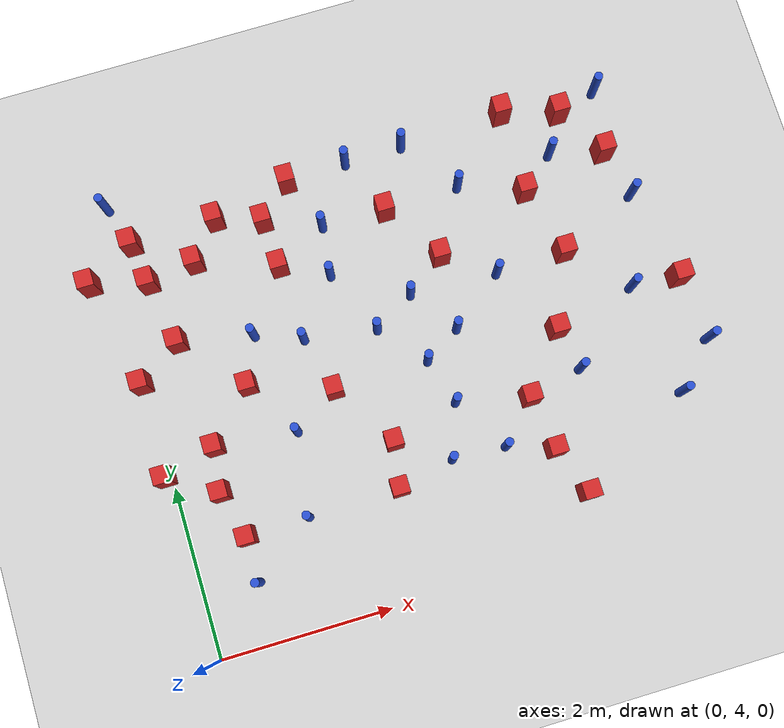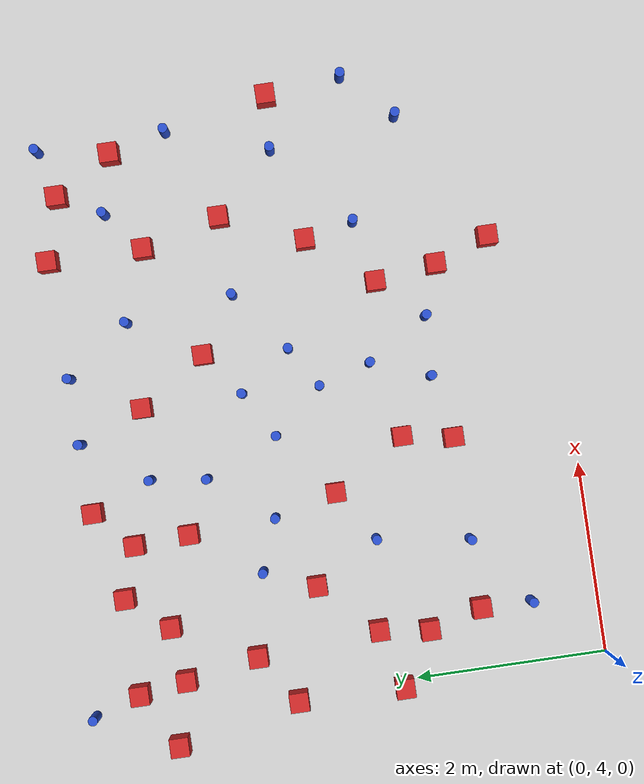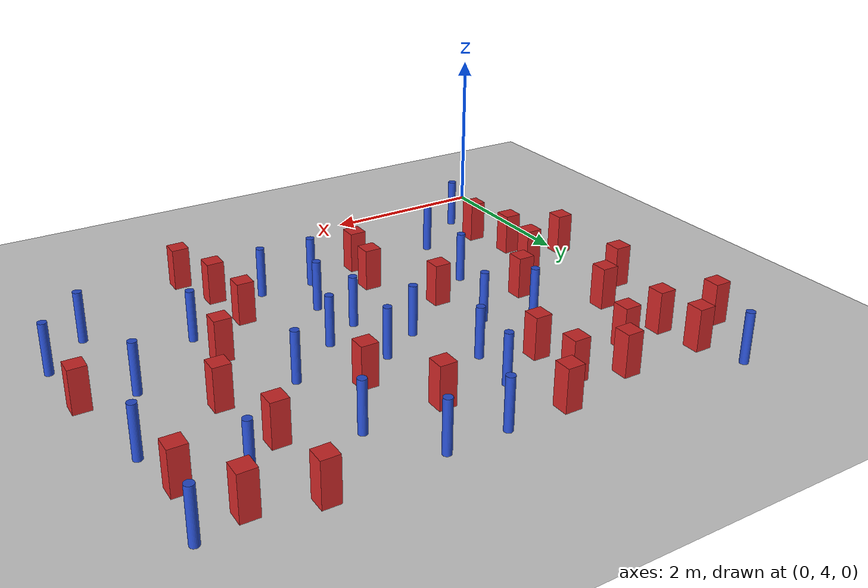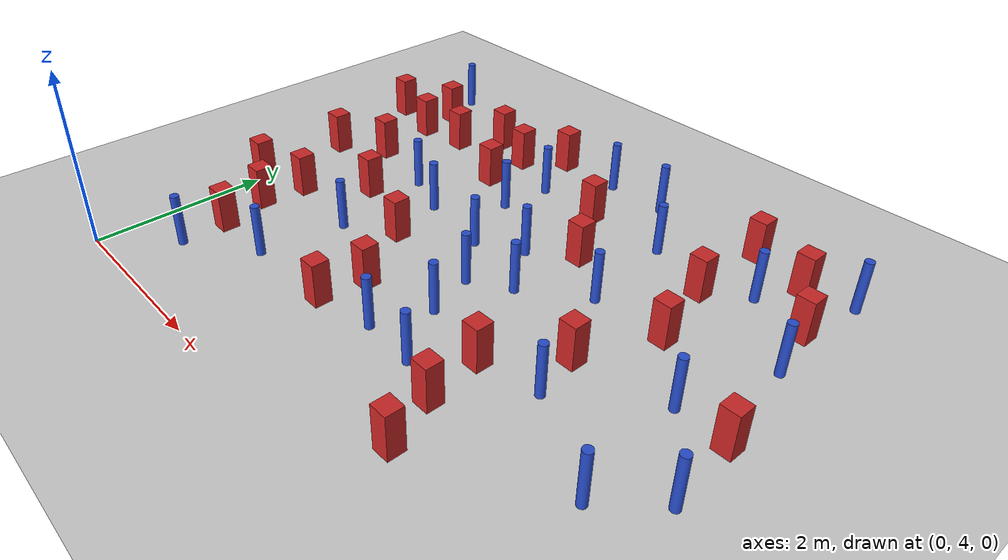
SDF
<sdf version="1.6">
 <world name="default">
  <model name="ground_plane">
   <static>1</static>
   <link name="link">
    <collision name="collision">
     <geometry><plane><normal>0 0 1</normal><size>100 100</size></plane></geometry>
     <surface><friction><ode><mu>100</mu><mu2>50</mu2></ode></friction></surface>
    </collision>
    <visual name="visual">
     <cast_shadows>0</cast_shadows>
     <geometry><plane><normal>0 0 1</normal><size>100 100</size></plane></geometry>
     <material>
      <ambient>1.0 1.0 1.0 1.0</ambient>
      <diffuse>0.8 0.8 0.8 1.0</diffuse>
      <specular>0.01 0.01 0.01 1.000000</specular>
     </material>
    </visual>
   </link>
  </model>
  <model name="pole_obstacle1">
   <static>true</static>
   <pose>3.19123953107 6.57956289459 2.88873142074e-08 -9.90536689859e-09 4.60219948989e-07 -1.20965994961e-07</pose>
   <link name="link">
    <pose>0 0 0.3 0 -0 0</pose>
    <inertial>
     <mass>1</mass>
     <inertia><ixx>0.145833</ixx><ixy>0</ixy><ixz>0</ixz><iyy>0.145833</iyy><iyz>0</iyz><izz>0.125</izz></inertia>
    </inertial>
    <collision name="collision">
     <geometry><cylinder><radius>0.05</radius><length>.6</length></cylinder></geometry>
    </collision>
    <visual name="visual">
     <geometry><cylinder><radius>0.05</radius><length>.6</length></cylinder></geometry>
     <material>
      <script><name>Gazebo/Blue</name><uri>file://media/materials/scripts/gazebo.material</uri></script>
     </material>
    </visual>
   </link>
  </model>
  <model name="square_post_obstacle6">
   <static>true</static>
   <pose>0.913329731252 8.47104677812 8.22691968438e-08 7.22125133819e-06 -7.54495500217e-07 2.29674213826e-05</pose>
   <link name="link">
    <pose>0 0 0.25 0 -0 0</pose>
    <inertial>
     <mass>100</mass>
     <inertia>
      <ixx>0.166667</ixx>
      <ixy>0</ixy>
      <ixz>0</ixz>
      <iyy>0.166667</iyy>
      <iyz>0</iyz>
      <izz>0.166667</izz>
     </inertia>
    </inertial>
    <collision name="collision"><geometry><box><size>.2 .2 .5</size></box></geometry></collision>
    <visual name="visual">
     <geometry><box><size>.2 .2 .5</size></box></geometry>
     <material>
      <script><name>Gazebo/Red</name><uri>file://media/materials/scripts/gazebo.material</uri></script>
     </material>
    </visual>
   </link>
  </model>
  <model name="pole_obstacle23">
   <static>true</static>
   <pose>5.88145847452 5.40329038732 2.88873142074e-08 -9.90536690842e-09 4.60219948965e-07 -1.20965994976e-07</pose>
   <link name="link">
    <pose>0 0 0.3 0 -0 0</pose>
    <inertial>
     <mass>1</mass>
     <inertia><ixx>0.145833</ixx><ixy>0</ixy><ixz>0</ixz><iyy>0.145833</iyy><iyz>0</iyz><izz>0.125</izz></inertia>
    </inertial>
    <collision name="collision">
     <geometry><cylinder><radius>0.05</radius><length>.6</length></cylinder></geometry>
    </collision>
    <visual name="visual">
     <geometry><cylinder><radius>0.05</radius><length>.6</length></cylinder></geometry>
     <material>
      <script><name>Gazebo/Blue</name><uri>file://media/materials/scripts/gazebo.material</uri></script>
     </material>
    </visual>
   </link>
  </model>
  <model name="square_post_obstacle23">
   <static>true</static>
   <pose>-0.0565510198866 6.14396593043 8.22691968438e-08 7.2212513382e-06 -7.54495500217e-07 2.29674213826e-05</pose>
   <link name="link">
    <pose>0 0 0.25 0 -0 0</pose>
    <inertial>
     <mass>100</mass>
     <inertia>
      <ixx>0.166667</ixx>
      <ixy>0</ixy>
      <ixz>0</ixz>
      <iyy>0.166667</iyy>
      <iyz>0</iyz>
      <izz>0.166667</izz>
     </inertia>
    </inertial>
    <collision name="collision"><geometry><box><size>.2 .2 .5</size></box></geometry></collision>
    <visual name="visual">
     <geometry><box><size>.2 .2 .5</size></box></geometry>
     <material>
      <script><name>Gazebo/Red</name><uri>file://media/materials/scripts/gazebo.material</uri></script>
     </material>
    </visual>
   </link>
  </model>
  <model name="pole_obstacle31">
   <static>true</static>
   <pose>2.39469707681 7.87934457702 2.88873142074e-08 -9.90536689859e-09 4.60219948989e-07 -1.20965994961e-07</pose>
   <link name="link">
    <pose>0 0 0.3 0 -0 0</pose>
    <inertial>
     <mass>1</mass>
     <inertia><ixx>0.145833</ixx><ixy>0</ixy><ixz>0</ixz><iyy>0.145833</iyy><iyz>0</iyz><izz>0.125</izz></inertia>
    </inertial>
    <collision name="collision">
     <geometry><cylinder><radius>0.05</radius><length>.6</length></cylinder></geometry>
    </collision>
    <visual name="visual">
     <geometry><cylinder><radius>0.05</radius><length>.6</length></cylinder></geometry>
     <material>
      <script><name>Gazebo/Blue</name><uri>file://media/materials/scripts/gazebo.material</uri></script>
     </material>
    </visual>
   </link>
  </model>
  <model name="square_post_obstacle30">
   <static>true</static>
   <pose>4.87530580692 9.20063706842 8.22691968438e-08 7.22125133819e-06 -7.54495500217e-07 2.29674213826e-05</pose>
   <link name="link">
    <pose>0 0 0.25 0 -0 0</pose>
    <inertial>
     <mass>100</mass>
     <inertia>
      <ixx>0.166667</ixx>
      <ixy>0</ixy>
      <ixz>0</ixz>
      <iyy>0.166667</iyy>
      <iyz>0</iyz>
      <izz>0.166667</izz>
     </inertia>
    </inertial>
    <collision name="collision"><geometry><box><size>.2 .2 .5</size></box></geometry></collision>
    <visual name="visual">
     <geometry><box><size>.2 .2 .5</size></box></geometry>
     <material>
      <script><name>Gazebo/Red</name><uri>file://media/materials/scripts/gazebo.material</uri></script>
     </material>
    </visual>
   </link>
  </model>
  <model name="pole_obstacle41">
   <static>true</static>
   <pose>1.38249493733 5.24669169826 2.88873142074e-08 -9.90536689852e-09 4.60219948989e-07 -1.2096599496e-07</pose>
   <link name="link">
    <pose>0 0 0.3 0 -0 0</pose>
    <inertial>
     <mass>1</mass>
     <inertia><ixx>0.145833</ixx><ixy>0</ixy><ixz>0</ixz><iyy>0.145833</iyy><iyz>0</iyz><izz>0.125</izz></inertia>
    </inertial>
    <collision name="collision">
     <geometry><cylinder><radius>0.05</radius><length>.6</length></cylinder></geometry>
    </collision>
    <visual name="visual">
     <geometry><cylinder><radius>0.05</radius><length>.6</length></cylinder></geometry>
     <material>
      <script><name>Gazebo/Blue</name><uri>file://media/materials/scripts/gazebo.material</uri></script>
     </material>
    </visual>
   </link>
  </model>
  <model name="pole_obstacle42">
   <static>true</static>
   <pose>0.0901893224247 9.39231995691 2.88873142074e-08 -9.90536691014e-09 4.60219948961e-07 -1.20965994979e-07</pose>
   <link name="link">
    <pose>0 0 0.3 0 -0 0</pose>
    <inertial>
     <mass>1</mass>
     <inertia><ixx>0.145833</ixx><ixy>0</ixy><ixz>0</ixz><iyy>0.145833</iyy><iyz>0</iyz><izz>0.125</izz></inertia>
    </inertial>
    <collision name="collision">
     <geometry><cylinder><radius>0.05</radius><length>.6</length></cylinder></geometry>
    </collision>
    <visual name="visual">
     <geometry><cylinder><radius>0.05</radius><length>.6</length></cylinder></geometry>
     <material>
      <script><name>Gazebo/Blue</name><uri>file://media/materials/scripts/gazebo.material</uri></script>
     </material>
    </visual>
   </link>
  </model>
  <model name="square_post_obstacle32">
   <static>true</static>
   <pose>0.658165198636 5.23855009337 8.22691968438e-08 7.2212513382e-06 -7.54495500217e-07 2.29674213826e-05</pose>
   <link name="link">
    <pose>0 0 0.25 0 -0 0</pose>
    <inertial>
     <mass>100</mass>
     <inertia>
      <ixx>0.166667</ixx>
      <ixy>0</ixy>
      <ixz>0</ixz>
      <iyy>0.166667</iyy>
      <iyz>0</iyz>
      <izz>0.166667</izz>
     </inertia>
    </inertial>
    <collision name="collision"><geometry><box><size>.2 .2 .5</size></box></geometry></collision>
    <visual name="visual">
     <geometry><box><size>.2 .2 .5</size></box></geometry>
     <material>
      <script><name>Gazebo/Red</name><uri>file://media/materials/scripts/gazebo.material</uri></script>
     </material>
    </visual>
   </link>
  </model>
  <model name="square_post_obstacle35">
   <static>true</static>
   <pose>5.08791279874 7.37173077253 8.22691968438e-08 7.2212513382e-06 -7.54495500217e-07 2.29674213826e-05</pose>
   <link name="link">
    <pose>0 0 0.25 0 -0 0</pose>
    <inertial>
     <mass>100</mass>
     <inertia>
      <ixx>0.166667</ixx>
      <ixy>0</ixy>
      <ixz>0</ixz>
      <iyy>0.166667</iyy>
      <iyz>0</iyz>
      <izz>0.166667</izz>
     </inertia>
    </inertial>
    <collision name="collision"><geometry><box><size>.2 .2 .5</size></box></geometry></collision>
    <visual name="visual">
     <geometry><box><size>.2 .2 .5</size></box></geometry>
     <material>
      <script><name>Gazebo/Red</name><uri>file://media/materials/scripts/gazebo.material</uri></script>
     </material>
    </visual>
   </link>
  </model>
  <model name="pole_obstacle46">
   <static>true</static>
   <pose>1.88863690419 7.23096262054 2.88873142074e-08 -9.90536689852e-09 4.60219948989e-07 -1.2096599496e-07</pose>
   <link name="link">
    <pose>0 0 0.3 0 -0 0</pose>
    <inertial>
     <mass>1</mass>
     <inertia><ixx>0.145833</ixx><ixy>0</ixy><ixz>0</ixz><iyy>0.145833</iyy><iyz>0</iyz><izz>0.125</izz></inertia>
    </inertial>
    <collision name="collision">
     <geometry><cylinder><radius>0.05</radius><length>.6</length></cylinder></geometry>
    </collision>
    <visual name="visual">
     <geometry><cylinder><radius>0.05</radius><length>.6</length></cylinder></geometry>
     <material>
      <script><name>Gazebo/Blue</name><uri>file://media/materials/scripts/gazebo.material</uri></script>
     </material>
    </visual>
   </link>
  </model>
  <model name="pole_obstacle49">
   <static>true</static>
   <pose>3.76044722196 5.37779520143 2.88873142074e-08 -9.90536689859e-09 4.60219948989e-07 -1.20965994961e-07</pose>
   <link name="link">
    <pose>0 0 0.3 0 -0 0</pose>
    <inertial>
     <mass>1</mass>
     <inertia><ixx>0.145833</ixx><ixy>0</ixy><ixz>0</ixz><iyy>0.145833</iyy><iyz>0</iyz><izz>0.125</izz></inertia>
    </inertial>
    <collision name="collision">
     <geometry><cylinder><radius>0.05</radius><length>.6</length></cylinder></geometry>
    </collision>
    <visual name="visual">
     <geometry><cylinder><radius>0.05</radius><length>.6</length></cylinder></geometry>
     <material>
      <script><name>Gazebo/Blue</name><uri>file://media/materials/scripts/gazebo.material</uri></script>
     </material>
    </visual>
   </link>
  </model>
  <model name="pole_obstacle53">
   <static>true</static>
   <pose>2.46697062215 8.47078407769 2.88873142074e-08 -9.90536692318e-09 4.6021994893e-07 -1.20965994988e-07</pose>
   <link name="link">
    <pose>0 0 0.3 0 -0 0</pose>
    <inertial>
     <mass>1</mass>
     <inertia><ixx>0.145833</ixx><ixy>0</ixy><ixz>0</ixz><iyy>0.145833</iyy><iyz>0</iyz><izz>0.125</izz></inertia>
    </inertial>
    <collision name="collision">
     <geometry><cylinder><radius>0.05</radius><length>.6</length></cylinder></geometry>
    </collision>
    <visual name="visual">
     <geometry><cylinder><radius>0.05</radius><length>.6</length></cylinder></geometry>
     <material>
      <script><name>Gazebo/Blue</name><uri>file://media/materials/scripts/gazebo.material</uri></script>
     </material>
    </visual>
   </link>
  </model>
  <model name="square_post_obstacle43">
   <static>true</static>
   <pose>1.81317104707 8.72580995912 8.22691968438e-08 7.22125133819e-06 -7.54495500217e-07 2.29674213826e-05</pose>
   <link name="link">
    <pose>0 0 0.25 0 -0 0</pose>
    <inertial>
     <mass>100</mass>
     <inertia>
      <ixx>0.166667</ixx>
      <ixy>0</ixy>
      <ixz>0</ixz>
      <iyy>0.166667</iyy>
      <iyz>0</iyz>
      <izz>0.166667</izz>
     </inertia>
    </inertial>
    <collision name="collision"><geometry><box><size>.2 .2 .5</size></box></geometry></collision>
    <visual name="visual">
     <geometry><box><size>.2 .2 .5</size></box></geometry>
     <material>
      <script><name>Gazebo/Red</name><uri>file://media/materials/scripts/gazebo.material</uri></script>
     </material>
    </visual>
   </link>
  </model>
  <model name="square_post_obstacle48">
   <static>true</static>
   <pose>2.46170097236 5.27326550182 8.22691968438e-08 7.2212513382e-06 -7.54495500217e-07 2.29674213826e-05</pose>
   <link name="link">
    <pose>0 0 0.25 0 -0 0</pose>
    <inertial>
     <mass>100</mass>
     <inertia>
      <ixx>0.166667</ixx>
      <ixy>0</ixy>
      <ixz>0</ixz>
      <iyy>0.166667</iyy>
      <iyz>0</iyz>
      <izz>0.166667</izz>
     </inertia>
    </inertial>
    <collision name="collision"><geometry><box><size>.2 .2 .5</size></box></geometry></collision>
    <visual name="visual">
     <geometry><box><size>.2 .2 .5</size></box></geometry>
     <material>
      <script><name>Gazebo/Red</name><uri>file://media/materials/scripts/gazebo.material</uri></script>
     </material>
    </visual>
   </link>
  </model>
  <model name="square_post_obstacle57">
   <static>true</static>
   <pose>5.53468506495 9.01613387753 8.22691968438e-08 7.22125133819e-06 -7.54495500217e-07 2.29674213826e-05</pose>
   <link name="link">
    <pose>0 0 0.25 0 -0 0</pose>
    <inertial>
     <mass>100</mass>
     <inertia>
      <ixx>0.166667</ixx>
      <ixy>0</ixy>
      <ixz>0</ixz>
      <iyy>0.166667</iyy>
      <iyz>0</iyz>
      <izz>0.166667</izz>
     </inertia>
    </inertial>
    <collision name="collision"><geometry><box><size>.2 .2 .5</size></box></geometry></collision>
    <visual name="visual">
     <geometry><box><size>.2 .2 .5</size></box></geometry>
     <material>
      <script><name>Gazebo/Red</name><uri>file://media/materials/scripts/gazebo.material</uri></script>
     </material>
    </visual>
   </link>
  </model>
  <model name="square_post_obstacle62">
   <static>true</static>
   <pose>0.478777097392 7.61445152014 8.22691968438e-08 7.2212513382e-06 -7.54495500217e-07 2.29674213826e-05</pose>
   <link name="link">
    <pose>0 0 0.25 0 -0 0</pose>
    <inertial>
     <mass>100</mass>
     <inertia>
      <ixx>0.166667</ixx>
      <ixy>0</ixy>
      <ixz>0</ixz>
      <iyy>0.166667</iyy>
      <iyz>0</iyz>
      <izz>0.166667</izz>
     </inertia>
    </inertial>
    <collision name="collision"><geometry><box><size>.2 .2 .5</size></box></geometry></collision>
    <visual name="visual">
     <geometry><box><size>.2 .2 .5</size></box></geometry>
     <material>
      <script><name>Gazebo/Red</name><uri>file://media/materials/scripts/gazebo.material</uri></script>
     </material>
    </visual>
   </link>
  </model>
  <model name="pole_obstacle76">
   <static>true</static>
   <pose>4.13065987566 8.48427852959 2.88873142074e-08 -9.9053668967e-09 4.60219948993e-07 -1.20965994957e-07</pose>
   <link name="link">
    <pose>0 0 0.3 0 -0 0</pose>
    <inertial>
     <mass>1</mass>
     <inertia><ixx>0.145833</ixx><ixy>0</ixy><ixz>0</ixz><iyy>0.145833</iyy><iyz>0</iyz><izz>0.125</izz></inertia>
    </inertial>
    <collision name="collision">
     <geometry><cylinder><radius>0.05</radius><length>.6</length></cylinder></geometry>
    </collision>
    <visual name="visual">
     <geometry><cylinder><radius>0.05</radius><length>.6</length></cylinder></geometry>
     <material>
      <script><name>Gazebo/Blue</name><uri>file://media/materials/scripts/gazebo.material</uri></script>
     </material>
    </visual>
   </link>
  </model>
  <model name="square_post_obstacle66">
   <static>true</static>
   <pose>4.28332563172 5.20060539239 8.22691968438e-08 7.2212513382e-06 -7.54495500217e-07 2.29674213826e-05</pose>
   <link name="link">
    <pose>0 0 0.25 0 -0 0</pose>
    <inertial>
     <mass>100</mass>
     <inertia>
      <ixx>0.166667</ixx>
      <ixy>0</ixy>
      <ixz>0</ixz>
      <iyy>0.166667</iyy>
      <iyz>0</iyz>
      <izz>0.166667</izz>
     </inertia>
    </inertial>
    <collision name="collision"><geometry><box><size>.2 .2 .5</size></box></geometry></collision>
    <visual name="visual">
     <geometry><box><size>.2 .2 .5</size></box></geometry>
     <material>
      <script><name>Gazebo/Red</name><uri>file://media/materials/scripts/gazebo.material</uri></script>
     </material>
    </visual>
   </link>
  </model>
  <model name="pole_obstacle83">
   <static>true</static>
   <pose>2.93807220961 9.14037682477 2.88873142074e-08 -9.90536692318e-09 4.6021994893e-07 -1.20965994988e-07</pose>
   <link name="link">
    <pose>0 0 0.3 0 -0 0</pose>
    <inertial>
     <mass>1</mass>
     <inertia><ixx>0.145833</ixx><ixy>0</ixy><ixz>0</ixz><iyy>0.145833</iyy><iyz>0</iyz><izz>0.125</izz></inertia>
    </inertial>
    <collision name="collision">
     <geometry><cylinder><radius>0.05</radius><length>.6</length></cylinder></geometry>
    </collision>
    <visual name="visual">
     <geometry><cylinder><radius>0.05</radius><length>.6</length></cylinder></geometry>
     <material>
      <script><name>Gazebo/Blue</name><uri>file://media/materials/scripts/gazebo.material</uri></script>
     </material>
    </visual>
   </link>
  </model>
  <model name="square_post_obstacle91">
   <static>true</static>
   <pose>4.19035391945 5.8473071399 8.22691968438e-08 7.2212513382e-06 -7.54495500217e-07 2.29674213826e-05</pose>
   <link name="link">
    <pose>0 0 0.25 0 -0 0</pose>
    <inertial>
     <mass>100</mass>
     <inertia>
      <ixx>0.166667</ixx>
      <ixy>0</ixy>
      <ixz>0</ixz>
      <iyy>0.166667</iyy>
      <iyz>0</iyz>
      <izz>0.166667</izz>
     </inertia>
    </inertial>
    <collision name="collision"><geometry><box><size>.2 .2 .5</size></box></geometry></collision>
    <visual name="visual">
     <geometry><box><size>.2 .2 .5</size></box></geometry>
     <material>
      <script><name>Gazebo/Red</name><uri>file://media/materials/scripts/gazebo.material</uri></script>
     </material>
    </visual>
   </link>
  </model>
  <model name="square_post_obstacle95">
   <static>true</static>
   <pose>4.72839891841 6.51399406358 8.22691968438e-08 7.2212513382e-06 -7.54495500217e-07 2.29674213826e-05</pose>
   <link name="link">
    <pose>0 0 0.25 0 -0 0</pose>
    <inertial>
     <mass>100</mass>
     <inertia>
      <ixx>0.166667</ixx>
      <ixy>0</ixy>
      <ixz>0</ixz>
      <iyy>0.166667</iyy>
      <iyz>0</iyz>
      <izz>0.166667</izz>
     </inertia>
    </inertial>
    <collision name="collision"><geometry><box><size>.2 .2 .5</size></box></geometry></collision>
    <visual name="visual">
     <geometry><box><size>.2 .2 .5</size></box></geometry>
     <material>
      <script><name>Gazebo/Red</name><uri>file://media/materials/scripts/gazebo.material</uri></script>
     </material>
    </visual>
   </link>
  </model>
  <model name="square_post_obstacle97">
   <static>true</static>
   <pose>2.54819670207 5.80178896222 8.22691968438e-08 7.2212513382e-06 -7.54495500217e-07 2.29674213826e-05</pose>
   <link name="link">
    <pose>0 0 0.25 0 -0 0</pose>
    <inertial>
     <mass>100</mass>
     <inertia>
      <ixx>0.166667</ixx>
      <ixy>0</ixy>
      <ixz>0</ixz>
      <iyy>0.166667</iyy>
      <iyz>0</iyz>
      <izz>0.166667</izz>
     </inertia>
    </inertial>
    <collision name="collision"><geometry><box><size>.2 .2 .5</size></box></geometry></collision>
    <visual name="visual">
     <geometry><box><size>.2 .2 .5</size></box></geometry>
     <material>
      <script><name>Gazebo/Red</name><uri>file://media/materials/scripts/gazebo.material</uri></script>
     </material>
    </visual>
   </link>
  </model>
  <model name="pole_obstacle106">
   <static>true</static>
   <pose>3.62266707134 6.84829248047 2.88873142074e-08 -9.90536689859e-09 4.60219948989e-07 -1.20965994961e-07</pose>
   <link name="link">
    <pose>0 0 0.3 0 -0 0</pose>
    <inertial>
     <mass>1</mass>
     <inertia><ixx>0.145833</ixx><ixy>0</ixy><ixz>0</ixz><iyy>0.145833</iyy><iyz>0</iyz><izz>0.125</izz></inertia>
    </inertial>
    <collision name="collision">
     <geometry><cylinder><radius>0.05</radius><length>.6</length></cylinder></geometry>
    </collision>
    <visual name="visual">
     <geometry><cylinder><radius>0.05</radius><length>.6</length></cylinder></geometry>
     <material>
      <script><name>Gazebo/Blue</name><uri>file://media/materials/scripts/gazebo.material</uri></script>
     </material>
    </visual>
   </link>
  </model>
  <model name="pole_obstacle107">
   <static>true</static>
   <pose>1.34589777619 7.43705154483 2.88873142074e-08 -9.90536689852e-09 4.60219948989e-07 -1.2096599496e-07</pose>
   <link name="link">
    <pose>0 0 0.3 0 -0 0</pose>
    <inertial>
     <mass>1</mass>
     <inertia><ixx>0.145833</ixx><ixy>0</ixy><ixz>0</ixz><iyy>0.145833</iyy><iyz>0</iyz><izz>0.125</izz></inertia>
    </inertial>
    <collision name="collision">
     <geometry><cylinder><radius>0.05</radius><length>.6</length></cylinder></geometry>
    </collision>
    <visual name="visual">
     <geometry><cylinder><radius>0.05</radius><length>.6</length></cylinder></geometry>
     <material>
      <script><name>Gazebo/Blue</name><uri>file://media/materials/scripts/gazebo.material</uri></script>
     </material>
    </visual>
   </link>
  </model>
  <model name="square_post_obstacle110">
   <static>true</static>
   <pose>3.68331745202 7.73902149261 8.22691968438e-08 7.2212513382e-06 -7.54495500217e-07 2.29674213826e-05</pose>
   <link name="link">
    <pose>0 0 0.25 0 -0 0</pose>
    <inertial>
     <mass>100</mass>
     <inertia>
      <ixx>0.166667</ixx>
      <ixy>0</ixy>
      <ixz>0</ixz>
      <iyy>0.166667</iyy>
      <iyz>0</iyz>
      <izz>0.166667</izz>
     </inertia>
    </inertial>
    <collision name="collision"><geometry><box><size>.2 .2 .5</size></box></geometry></collision>
    <visual name="visual">
     <geometry><box><size>.2 .2 .5</size></box></geometry>
     <material>
      <script><name>Gazebo/Red</name><uri>file://media/materials/scripts/gazebo.material</uri></script>
     </material>
    </visual>
   </link>
  </model>
  <model name="square_post_obstacle111">
   <static>true</static>
   <pose>0.505751158955 5.80068399848 8.22691968438e-08 7.2212513382e-06 -7.54495500217e-07 2.29674213826e-05</pose>
   <link name="link">
    <pose>0 0 0.25 0 -0 0</pose>
    <inertial>
     <mass>100</mass>
     <inertia>
      <ixx>0.166667</ixx>
      <ixy>0</ixy>
      <ixz>0</ixz>
      <iyy>0.166667</iyy>
      <iyz>0</iyz>
      <izz>0.166667</izz>
     </inertia>
    </inertial>
    <collision name="collision"><geometry><box><size>.2 .2 .5</size></box></geometry></collision>
    <visual name="visual">
     <geometry><box><size>.2 .2 .5</size></box></geometry>
     <material>
      <script><name>Gazebo/Red</name><uri>file://media/materials/scripts/gazebo.material</uri></script>
     </material>
    </visual>
   </link>
  </model>
  <model name="square_post_obstacle113">
   <static>true</static>
   <pose>5.9023980784 8.40773841688 8.22691968438e-08 7.22125133819e-06 -7.54495500217e-07 2.29674213826e-05</pose>
   <link name="link">
    <pose>0 0 0.25 0 -0 0</pose>
    <inertial>
     <mass>100</mass>
     <inertia>
      <ixx>0.166667</ixx>
      <ixy>0</ixy>
      <ixz>0</ixz>
      <iyy>0.166667</iyy>
      <iyz>0</iyz>
      <izz>0.166667</izz>
     </inertia>
    </inertial>
    <collision name="collision"><geometry><box><size>.2 .2 .5</size></box></geometry></collision>
    <visual name="visual">
     <geometry><box><size>.2 .2 .5</size></box></geometry>
     <material>
      <script><name>Gazebo/Red</name><uri>file://media/materials/scripts/gazebo.material</uri></script>
     </material>
    </visual>
   </link>
  </model>
  <model name="square_post_obstacle124">
   <static>true</static>
   <pose>2.20818835917 9.10818057557 8.22691968438e-08 7.22125133819e-06 -7.54495500217e-07 2.29674213826e-05</pose>
   <link name="link">
    <pose>0 0 0.25 0 -0 0</pose>
    <inertial>
     <mass>100</mass>
     <inertia>
      <ixx>0.166667</ixx>
      <ixy>0</ixy>
      <ixz>0</ixz>
      <iyy>0.166667</iyy>
      <iyz>0</iyz>
      <izz>0.166667</izz>
     </inertia>
    </inertial>
    <collision name="collision"><geometry><box><size>.2 .2 .5</size></box></geometry></collision>
    <visual name="visual">
     <geometry><box><size>.2 .2 .5</size></box></geometry>
     <material>
      <script><name>Gazebo/Red</name><uri>file://media/materials/scripts/gazebo.material</uri></script>
     </material>
    </visual>
   </link>
  </model>
  <model name="pole_obstacle129">
   <static>true</static>
   <pose>6.03570572407 9.15384262761 2.88873142074e-08 -9.9053668967e-09 4.60219948993e-07 -1.20965994957e-07</pose>
   <link name="link">
    <pose>0 0 0.3 0 -0 0</pose>
    <inertial>
     <mass>1</mass>
     <inertia><ixx>0.145833</ixx><ixy>0</ixy><ixz>0</ixz><iyy>0.145833</iyy><iyz>0</iyz><izz>0.125</izz></inertia>
    </inertial>
    <collision name="collision">
     <geometry><cylinder><radius>0.05</radius><length>.6</length></cylinder></geometry>
    </collision>
    <visual name="visual">
     <geometry><cylinder><radius>0.05</radius><length>.6</length></cylinder></geometry>
     <material>
      <script><name>Gazebo/Blue</name><uri>file://media/materials/scripts/gazebo.material</uri></script>
     </material>
    </visual>
   </link>
  </model>
  <model name="square_post_obstacle128">
   <static>true</static>
   <pose>1.8469598954 8.14797993601 8.22691968438e-08 7.22125133819e-06 -7.54495500217e-07 2.29674213826e-05</pose>
   <link name="link">
    <pose>0 0 0.25 0 -0 0</pose>
    <inertial>
     <mass>100</mass>
     <inertia>
      <ixx>0.166667</ixx>
      <ixy>0</ixy>
      <ixz>0</ixz>
      <iyy>0.166667</iyy>
      <iyz>0</iyz>
      <izz>0.166667</izz>
     </inertia>
    </inertial>
    <collision name="collision"><geometry><box><size>.2 .2 .5</size></box></geometry></collision>
    <visual name="visual">
     <geometry><box><size>.2 .2 .5</size></box></geometry>
     <material>
      <script><name>Gazebo/Red</name><uri>file://media/materials/scripts/gazebo.material</uri></script>
     </material>
    </visual>
   </link>
  </model>
  <model name="pole_obstacle132">
   <static>true</static>
   <pose>6.36926894897 5.909163744 2.88873142074e-08 -9.90536690842e-09 4.60219948965e-07 -1.20965994976e-07</pose>
   <link name="link">
    <pose>0 0 0.3 0 -0 0</pose>
    <inertial>
     <mass>1</mass>
     <inertia><ixx>0.145833</ixx><ixy>0</ixy><ixz>0</ixz><iyy>0.145833</iyy><iyz>0</iyz><izz>0.125</izz></inertia>
    </inertial>
    <collision name="collision">
     <geometry><cylinder><radius>0.05</radius><length>.6</length></cylinder></geometry>
    </collision>
    <visual name="visual">
     <geometry><cylinder><radius>0.05</radius><length>.6</length></cylinder></geometry>
     <material>
      <script><name>Gazebo/Blue</name><uri>file://media/materials/scripts/gazebo.material</uri></script>
     </material>
    </visual>
   </link>
  </model>
  <model name="square_post_obstacle129">
   <static>true</static>
   <pose>-0.0374609143018 7.25691526056 8.22691968438e-08 7.2212513382e-06 -7.54495500217e-07 2.29674213826e-05</pose>
   <link name="link">
    <pose>0 0 0.25 0 -0 0</pose>
    <inertial>
     <mass>100</mass>
     <inertia>
      <ixx>0.166667</ixx>
      <ixy>0</ixy>
      <ixz>0</ixz>
      <iyy>0.166667</iyy>
      <iyz>0</iyz>
      <izz>0.166667</izz>
     </inertia>
    </inertial>
    <collision name="collision"><geometry><box><size>.2 .2 .5</size></box></geometry></collision>
    <visual name="visual">
     <geometry><box><size>.2 .2 .5</size></box></geometry>
     <material>
      <script><name>Gazebo/Red</name><uri>file://media/materials/scripts/gazebo.material</uri></script>
     </material>
    </visual>
   </link>
  </model>
  <model name="pole_obstacle137">
   <static>true</static>
   <pose>3.2249252004 7.39122287335 2.88873142074e-08 -9.90536689859e-09 4.60219948989e-07 -1.20965994961e-07</pose>
   <link name="link">
    <pose>0 0 0.3 0 -0 0</pose>
    <inertial>
     <mass>1</mass>
     <inertia><ixx>0.145833</ixx><ixy>0</ixy><ixz>0</ixz><iyy>0.145833</iyy><iyz>0</iyz><izz>0.125</izz></inertia>
    </inertial>
    <collision name="collision">
     <geometry><cylinder><radius>0.05</radius><length>.6</length></cylinder></geometry>
    </collision>
    <visual name="visual">
     <geometry><cylinder><radius>0.05</radius><length>.6</length></cylinder></geometry>
     <material>
      <script><name>Gazebo/Blue</name><uri>file://media/materials/scripts/gazebo.material</uri></script>
     </material>
    </visual>
   </link>
  </model>
  <model name="pole_obstacle138">
   <static>true</static>
   <pose>3.35797718544 6.02547066716 2.88873142074e-08 -9.90536689859e-09 4.60219948989e-07 -1.20965994961e-07</pose>
   <link name="link">
    <pose>0 0 0.3 0 -0 0</pose>
    <inertial>
     <mass>1</mass>
     <inertia><ixx>0.145833</ixx><ixy>0</ixy><ixz>0</ixz><iyy>0.145833</iyy><iyz>0</iyz><izz>0.125</izz></inertia>
    </inertial>
    <collision name="collision">
     <geometry><cylinder><radius>0.05</radius><length>.6</length></cylinder></geometry>
    </collision>
    <visual name="visual">
     <geometry><cylinder><radius>0.05</radius><length>.6</length></cylinder></geometry>
     <material>
      <script><name>Gazebo/Blue</name><uri>file://media/materials/scripts/gazebo.material</uri></script>
     </material>
    </visual>
   </link>
  </model>
  <model name="pole_obstacle144">
   <static>true</static>
   <pose>6.05798402083 7.80340541203 2.88873142074e-08 -9.90536690842e-09 4.60219948965e-07 -1.20965994976e-07</pose>
   <link name="link">
    <pose>0 0 0.3 0 -0 0</pose>
    <inertial>
     <mass>1</mass>
     <inertia><ixx>0.145833</ixx><ixy>0</ixy><ixz>0</ixz><iyy>0.145833</iyy><iyz>0</iyz><izz>0.125</izz></inertia>
    </inertial>
    <collision name="collision">
     <geometry><cylinder><radius>0.05</radius><length>.6</length></cylinder></geometry>
    </collision>
    <visual name="visual">
     <geometry><cylinder><radius>0.05</radius><length>.6</length></cylinder></geometry>
     <material>
      <script><name>Gazebo/Blue</name><uri>file://media/materials/scripts/gazebo.material</uri></script>
     </material>
    </visual>
   </link>
  </model>
  <model name="pole_obstacle151">
   <static>true</static>
   <pose>3.63331723428 9.15454733646 2.88873142074e-08 -9.90536692318e-09 4.6021994893e-07 -1.20965994988e-07</pose>
   <link name="link">
    <pose>0 0 0.3 0 -0 0</pose>
    <inertial>
     <mass>1</mass>
     <inertia><ixx>0.145833</ixx><ixy>0</ixy><ixz>0</ixz><iyy>0.145833</iyy><iyz>0</iyz><izz>0.125</izz></inertia>
    </inertial>
    <collision name="collision">
     <geometry><cylinder><radius>0.05</radius><length>.6</length></cylinder></geometry>
    </collision>
    <visual name="visual">
     <geometry><cylinder><radius>0.05</radius><length>.6</length></cylinder></geometry>
     <material>
      <script><name>Gazebo/Blue</name><uri>file://media/materials/scripts/gazebo.material</uri></script>
     </material>
    </visual>
   </link>
  </model>
  <model name="square_post_obstacle148">
   <static>true</static>
   <pose>6.27502830692 6.70637151003 8.22691968438e-08 7.2212513382e-06 -7.54495500217e-07 2.29674213826e-05</pose>
   <link name="link">
    <pose>0 0 0.25 0 -0 0</pose>
    <inertial>
     <mass>100</mass>
     <inertia>
      <ixx>0.166667</ixx>
      <ixy>0</ixy>
      <ixz>0</ixz>
      <iyy>0.166667</iyy>
      <iyz>0</iyz>
      <izz>0.166667</izz>
     </inertia>
    </inertial>
    <collision name="collision"><geometry><box><size>.2 .2 .5</size></box></geometry></collision>
    <visual name="visual">
     <geometry><box><size>.2 .2 .5</size></box></geometry>
     <material>
      <script><name>Gazebo/Red</name><uri>file://media/materials/scripts/gazebo.material</uri></script>
     </material>
    </visual>
   </link>
  </model>
  <model name="pole_obstacle154">
   <static>true</static>
   <pose>0.650008066042 4.70589127056 2.88873142074e-08 -9.90536689661e-09 4.60219948993e-07 -1.20965994957e-07</pose>
   <link name="link">
    <pose>0 0 0.3 0 -0 0</pose>
    <inertial>
     <mass>1</mass>
     <inertia><ixx>0.145833</ixx><ixy>0</ixy><ixz>0</ixz><iyy>0.145833</iyy><iyz>0</iyz><izz>0.125</izz></inertia>
    </inertial>
    <collision name="collision">
     <geometry><cylinder><radius>0.05</radius><length>.6</length></cylinder></geometry>
    </collision>
    <visual name="visual">
     <geometry><cylinder><radius>0.05</radius><length>.6</length></cylinder></geometry>
     <material>
      <script><name>Gazebo/Blue</name><uri>file://media/materials/scripts/gazebo.material</uri></script>
     </material>
    </visual>
   </link>
  </model>
  <model name="pole_obstacle158">
   <static>true</static>
   <pose>1.52254583418 6.21823410261 2.88873142074e-08 -9.90536689852e-09 4.60219948989e-07 -1.2096599496e-07</pose>
   <link name="link">
    <pose>0 0 0.3 0 -0 0</pose>
    <inertial>
     <mass>1</mass>
     <inertia><ixx>0.145833</ixx><ixy>0</ixy><ixz>0</ixz><iyy>0.145833</iyy><iyz>0</iyz><izz>0.125</izz></inertia>
    </inertial>
    <collision name="collision">
     <geometry><cylinder><radius>0.05</radius><length>.6</length></cylinder></geometry>
    </collision>
    <visual name="visual">
     <geometry><cylinder><radius>0.05</radius><length>.6</length></cylinder></geometry>
     <material>
      <script><name>Gazebo/Blue</name><uri>file://media/materials/scripts/gazebo.material</uri></script>
     </material>
    </visual>
   </link>
  </model>
  <model name="pole_obstacle162">
   <static>true</static>
   <pose>5.28960352226 8.55436398244 2.88873142074e-08 -9.9053668967e-09 4.60219948993e-07 -1.20965994957e-07</pose>
   <link name="link">
    <pose>0 0 0.3 0 -0 0</pose>
    <inertial>
     <mass>1</mass>
     <inertia><ixx>0.145833</ixx><ixy>0</ixy><ixz>0</ixz><iyy>0.145833</iyy><iyz>0</iyz><izz>0.125</izz></inertia>
    </inertial>
    <collision name="collision">
     <geometry><cylinder><radius>0.05</radius><length>.6</length></cylinder></geometry>
    </collision>
    <visual name="visual">
     <geometry><cylinder><radius>0.05</radius><length>.6</length></cylinder></geometry>
     <material>
      <script><name>Gazebo/Blue</name><uri>file://media/materials/scripts/gazebo.material</uri></script>
     </material>
    </visual>
   </link>
  </model>
  <model name="square_post_obstacle170">
   <static>true</static>
   <pose>0.262400881148 8.89025189909 8.22691968438e-08 7.22125133819e-06 -7.54495500217e-07 2.29674213826e-05</pose>
   <link name="link">
    <pose>0 0 0.25 0 -0 0</pose>
    <inertial>
     <mass>100</mass>
     <inertia>
      <ixx>0.166667</ixx>
      <ixy>0</ixy>
      <ixz>0</ixz>
      <iyy>0.166667</iyy>
      <iyz>0</iyz>
      <izz>0.166667</izz>
     </inertia>
    </inertial>
    <collision name="collision"><geometry><box><size>.2 .2 .5</size></box></geometry></collision>
    <visual name="visual">
     <geometry><box><size>.2 .2 .5</size></box></geometry>
     <material>
      <script><name>Gazebo/Red</name><uri>file://media/materials/scripts/gazebo.material</uri></script>
     </material>
    </visual>
   </link>
  </model>
  <model name="pole_obstacle171">
   <static>true</static>
   <pose>4.84716301932 5.99158660181 2.88873142074e-08 -9.90536690842e-09 4.60219948965e-07 -1.20965994976e-07</pose>
   <link name="link">
    <pose>0 0 0.3 0 -0 0</pose>
    <inertial>
     <mass>1</mass>
     <inertia><ixx>0.145833</ixx><ixy>0</ixy><ixz>0</ixz><iyy>0.145833</iyy><iyz>0</iyz><izz>0.125</izz></inertia>
    </inertial>
    <collision name="collision">
     <geometry><cylinder><radius>0.05</radius><length>.6</length></cylinder></geometry>
    </collision>
    <visual name="visual">
     <geometry><cylinder><radius>0.05</radius><length>.6</length></cylinder></geometry>
     <material>
      <script><name>Gazebo/Blue</name><uri>file://media/materials/scripts/gazebo.material</uri></script>
     </material>
    </visual>
   </link>
  </model>
  <model name="pole_obstacle177">
   <static>true</static>
   <pose>3.12985846044 5.40985099026 2.88873142074e-08 -9.90536689859e-09 4.60219948989e-07 -1.20965994961e-07</pose>
   <link name="link">
    <pose>0 0 0.3 0 -0 0</pose>
    <inertial>
     <mass>1</mass>
     <inertia><ixx>0.145833</ixx><ixy>0</ixy><ixz>0</ixz><iyy>0.145833</iyy><iyz>0</iyz><izz>0.125</izz></inertia>
    </inertial>
    <collision name="collision">
     <geometry><cylinder><radius>0.05</radius><length>.6</length></cylinder></geometry>
    </collision>
    <visual name="visual">
     <geometry><cylinder><radius>0.05</radius><length>.6</length></cylinder></geometry>
     <material>
      <script><name>Gazebo/Blue</name><uri>file://media/materials/scripts/gazebo.material</uri></script>
     </material>
    </visual>
   </link>
  </model>
  <model name="square_post_obstacle179">
   <static>true</static>
   <pose>1.27571727882 8.90372420095 8.22691968438e-08 7.22125133819e-06 -7.54495500217e-07 2.29674213826e-05</pose>
   <link name="link">
    <pose>0 0 0.25 0 -0 0</pose>
    <inertial>
     <mass>100</mass>
     <inertia>
      <ixx>0.166667</ixx>
      <ixy>0</ixy>
      <ixz>0</ixz>
      <iyy>0.166667</iyy>
      <iyz>0</iyz>
      <izz>0.166667</izz>
     </inertia>
    </inertial>
    <collision name="collision"><geometry><box><size>.2 .2 .5</size></box></geometry></collision>
    <visual name="visual">
     <geometry><box><size>.2 .2 .5</size></box></geometry>
     <material>
      <script><name>Gazebo/Red</name><uri>file://media/materials/scripts/gazebo.material</uri></script>
     </material>
    </visual>
   </link>
  </model>
  <model name="square_post_obstacle185">
   <static>true</static>
   <pose>-0.322947175691 8.55364489366 8.22691968438e-08 7.22125133819e-06 -7.54495500217e-07 2.29674213826e-05</pose>
   <link name="link">
    <pose>0 0 0.25 0 -0 0</pose>
    <inertial>
     <mass>100</mass>
     <inertia>
      <ixx>0.166667</ixx>
      <ixy>0</ixy>
      <ixz>0</ixz>
      <iyy>0.166667</iyy>
      <iyz>0</iyz>
      <izz>0.166667</izz>
     </inertia>
    </inertial>
    <collision name="collision"><geometry><box><size>.2 .2 .5</size></box></geometry></collision>
    <visual name="visual">
     <geometry><box><size>.2 .2 .5</size></box></geometry>
     <material>
      <script><name>Gazebo/Red</name><uri>file://media/materials/scripts/gazebo.material</uri></script>
     </material>
    </visual>
   </link>
  </model>
  <model name="square_post_obstacle196">
   <static>true</static>
   <pose>4.86992573599 8.20114353314 8.22691968438e-08 7.22125133819e-06 -7.54495500217e-07 2.29674213826e-05</pose>
   <link name="link">
    <pose>0 0 0.25 0 -0 0</pose>
    <inertial>
     <mass>100</mass>
     <inertia>
      <ixx>0.166667</ixx>
      <ixy>0</ixy>
      <ixz>0</ixz>
      <iyy>0.166667</iyy>
      <iyz>0</iyz>
      <izz>0.166667</izz>
     </inertia>
    </inertial>
    <collision name="collision"><geometry><box><size>.2 .2 .5</size></box></geometry></collision>
    <visual name="visual">
     <geometry><box><size>.2 .2 .5</size></box></geometry>
     <material>
      <script><name>Gazebo/Red</name><uri>file://media/materials/scripts/gazebo.material</uri></script>
     </material>
    </visual>
   </link>
  </model>
  <model name="square_post_obstacle204">
   <static>true</static>
   <pose>0.573244125707 6.32484830398 8.22691968438e-08 7.2212513382e-06 -7.54495500217e-07 2.29674213826e-05</pose>
   <link name="link">
    <pose>0 0 0.25 0 -0 0</pose>
    <inertial>
     <mass>100</mass>
     <inertia>
      <ixx>0.166667</ixx>
      <ixy>0</ixy>
      <ixz>0</ixz>
      <iyy>0.166667</iyy>
      <iyz>0</iyz>
      <izz>0.166667</izz>
     </inertia>
    </inertial>
    <collision name="collision"><geometry><box><size>.2 .2 .5</size></box></geometry></collision>
    <visual name="visual">
     <geometry><box><size>.2 .2 .5</size></box></geometry>
     <material>
      <script><name>Gazebo/Red</name><uri>file://media/materials/scripts/gazebo.material</uri></script>
     </material>
    </visual>
   </link>
  </model>
  <model name="square_post_obstacle206">
   <static>true</static>
   <pose>4.4926005219 4.62681279372 8.22691968438e-08 7.2212513382e-06 -7.54495500217e-07 2.29674213826e-05</pose>
   <link name="link">
    <pose>0 0 0.25 0 -0 0</pose>
    <inertial>
     <mass>100</mass>
     <inertia>
      <ixx>0.166667</ixx>
      <ixy>0</ixy>
      <ixz>0</ixz>
      <iyy>0.166667</iyy>
      <iyz>0</iyz>
      <izz>0.166667</izz>
     </inertia>
    </inertial>
    <collision name="collision"><geometry><box><size>.2 .2 .5</size></box></geometry></collision>
    <visual name="visual">
     <geometry><box><size>.2 .2 .5</size></box></geometry>
     <material>
      <script><name>Gazebo/Red</name><uri>file://media/materials/scripts/gazebo.material</uri></script>
     </material>
    </visual>
   </link>
  </model>
  <model name="pole_obstacle197">
   <static>true</static>
   <pose>5.71372043611 6.74056020509 2.88873142074e-08 -9.90536690842e-09 4.60219948965e-07 -1.20965994976e-07</pose>
   <link name="link">
    <pose>0 0 0.3 0 -0 0</pose>
    <inertial>
     <mass>1</mass>
     <inertia><ixx>0.145833</ixx><ixy>0</ixy><ixz>0</ixz><iyy>0.145833</iyy><iyz>0</iyz><izz>0.125</izz></inertia>
    </inertial>
    <collision name="collision">
     <geometry><cylinder><radius>0.05</radius><length>.6</length></cylinder></geometry>
    </collision>
    <visual name="visual">
     <geometry><cylinder><radius>0.05</radius><length>.6</length></cylinder></geometry>
     <material>
      <script><name>Gazebo/Blue</name><uri>file://media/materials/scripts/gazebo.material</uri></script>
     </material>
    </visual>
   </link>
  </model>
  <model name="pole_obstacle202">
   <static>true</static>
   <pose>4.26391294254 7.34778698662 2.88873142074e-08 -9.90536690842e-09 4.60219948965e-07 -1.20965994976e-07</pose>
   <link name="link">
    <pose>0 0 0.3 0 -0 0</pose>
    <inertial>
     <mass>1</mass>
     <inertia><ixx>0.145833</ixx><ixy>0</ixy><ixz>0</ixz><iyy>0.145833</iyy><iyz>0</iyz><izz>0.125</izz></inertia>
    </inertial>
    <collision name="collision">
     <geometry><cylinder><radius>0.05</radius><length>.6</length></cylinder></geometry>
    </collision>
    <visual name="visual">
     <geometry><cylinder><radius>0.05</radius><length>.6</length></cylinder></geometry>
     <material>
      <script><name>Gazebo/Blue</name><uri>file://media/materials/scripts/gazebo.material</uri></script>
     </material>
    </visual>
   </link>
  </model>
  <model name="pole_obstacle207">
   <static>true</static>
   <pose>2.73674350545 7.10166758908 2.88873142074e-08 -9.90536689859e-09 4.60219948989e-07 -1.20965994961e-07</pose>
   <link name="link">
    <pose>0 0 0.3 0 -0 0</pose>
    <inertial>
     <mass>1</mass>
     <inertia><ixx>0.145833</ixx><ixy>0</ixy><ixz>0</ixz><iyy>0.145833</iyy><iyz>0</iyz><izz>0.125</izz></inertia>
    </inertial>
    <collision name="collision">
     <geometry><cylinder><radius>0.05</radius><length>.6</length></cylinder></geometry>
    </collision>
    <visual name="visual">
     <geometry><cylinder><radius>0.05</radius><length>.6</length></cylinder></geometry>
     <material>
      <script><name>Gazebo/Blue</name><uri>file://media/materials/scripts/gazebo.material</uri></script>
     </material>
    </visual>
   </link>
  </model>
  <model name="square_post_obstacle207">
   <static>true</static>
   <pose>1.12366547584 6.89828514076 8.22691968438e-08 7.2212513382e-06 -7.54495500217e-07 2.29674213826e-05</pose>
   <link name="link">
    <pose>0 0 0.25 0 -0 0</pose>
    <inertial>
     <mass>100</mass>
     <inertia>
      <ixx>0.166667</ixx>
      <ixy>0</ixy>
      <ixz>0</ixz>
      <iyy>0.166667</iyy>
      <iyz>0</iyz>
      <izz>0.166667</izz>
     </inertia>
    </inertial>
    <collision name="collision"><geometry><box><size>.2 .2 .5</size></box></geometry></collision>
    <visual name="visual">
     <geometry><box><size>.2 .2 .5</size></box></geometry>
     <material>
      <script><name>Gazebo/Red</name><uri>file://media/materials/scripts/gazebo.material</uri></script>
     </material>
    </visual>
   </link>
  </model>
  <model name="square_post_obstacle211">
   <static>true</static>
   <pose>2.06352617098 6.56889536694 8.22691968438e-08 7.22125133819e-06 -7.54495500217e-07 2.29674213826e-05</pose>
   <link name="link">
    <pose>0 0 0.25 0 -0 0</pose>
    <inertial>
     <mass>100</mass>
     <inertia>
      <ixx>0.166667</ixx>
      <ixy>0</ixy>
      <ixz>0</ixz>
      <iyy>0.166667</iyy>
      <iyz>0</iyz>
      <izz>0.166667</izz>
     </inertia>
    </inertial>
    <collision name="collision"><geometry><box><size>.2 .2 .5</size></box></geometry></collision>
    <visual name="visual">
     <geometry><box><size>.2 .2 .5</size></box></geometry>
     <material>
      <script><name>Gazebo/Red</name><uri>file://media/materials/scripts/gazebo.material</uri></script>
     </material>
    </visual>
   </link>
  </model>
  <model name="square_post_obstacle212">
   <static>true</static>
   <pose>3.22103937087 8.44693176599 8.22691968438e-08 7.22125133819e-06 -7.54495500217e-07 2.29674213826e-05</pose>
   <link name="link">
    <pose>0 0 0.25 0 -0 0</pose>
    <inertial>
     <mass>100</mass>
     <inertia>
      <ixx>0.166667</ixx>
      <ixy>0</ixy>
      <ixz>0</ixz>
      <iyy>0.166667</iyy>
      <iyz>0</iyz>
      <izz>0.166667</izz>
     </inertia>
    </inertial>
    <collision name="collision"><geometry><box><size>.2 .2 .5</size></box></geometry></collision>
    <visual name="visual">
     <geometry><box><size>.2 .2 .5</size></box></geometry>
     <material>
      <script><name>Gazebo/Red</name><uri>file://media/materials/scripts/gazebo.material</uri></script>
     </material>
    </visual>
   </link>
  </model>
  <model name="square_post_obstacle229">
   <static>true</static>
   <pose>0.339701368823 8.38746277149 8.22691968438e-08 7.22125133819e-06 -7.54495500217e-07 2.29674213826e-05</pose>
   <link name="link">
    <pose>0 0 0.25 0 -0 0</pose>
    <inertial>
     <mass>100</mass>
     <inertia>
      <ixx>0.166667</ixx>
      <ixy>0</ixy>
      <ixz>0</ixz>
      <iyy>0.166667</iyy>
      <iyz>0</iyz>
      <izz>0.166667</izz>
     </inertia>
    </inertial>
    <collision name="collision"><geometry><box><size>.2 .2 .5</size></box></geometry></collision>
    <visual name="visual">
     <geometry><box><size>.2 .2 .5</size></box></geometry>
     <material>
      <script><name>Gazebo/Red</name><uri>file://media/materials/scripts/gazebo.material</uri></script>
     </material>
    </visual>
   </link>
  </model>
 </world>
</sdf>
